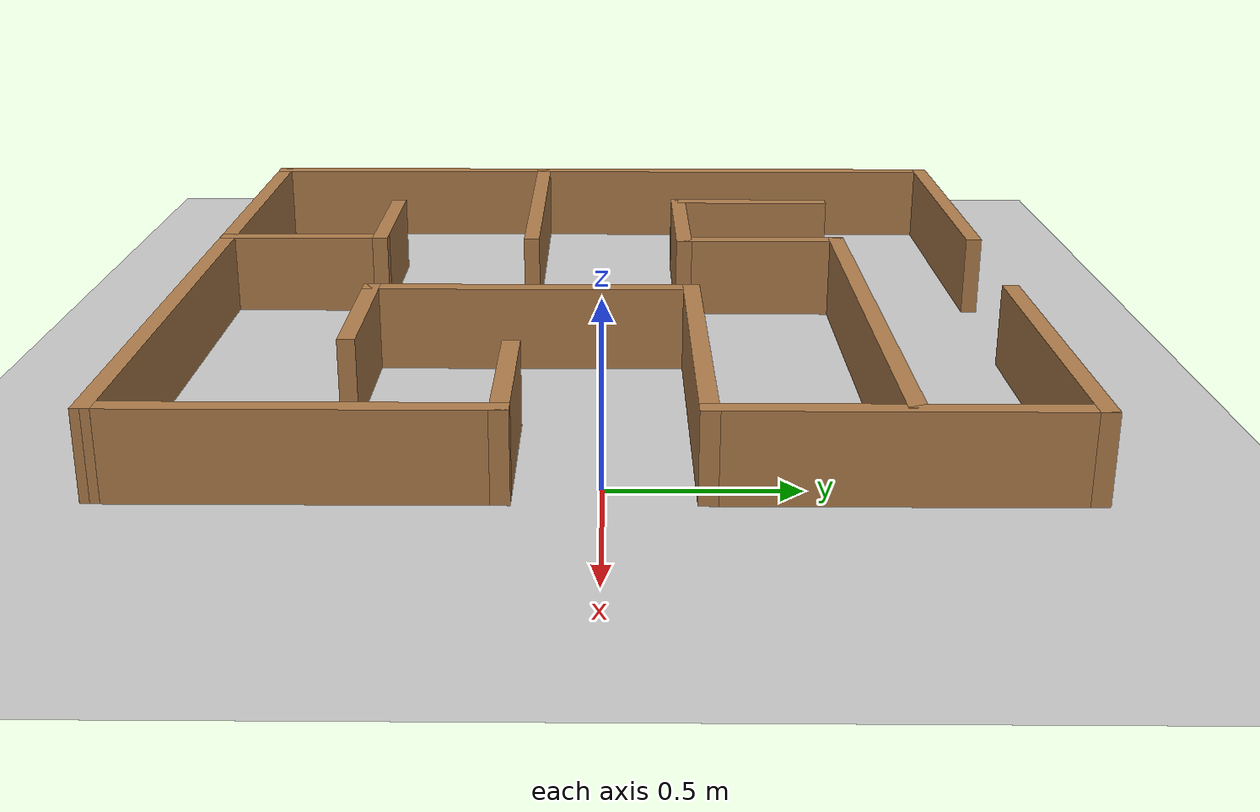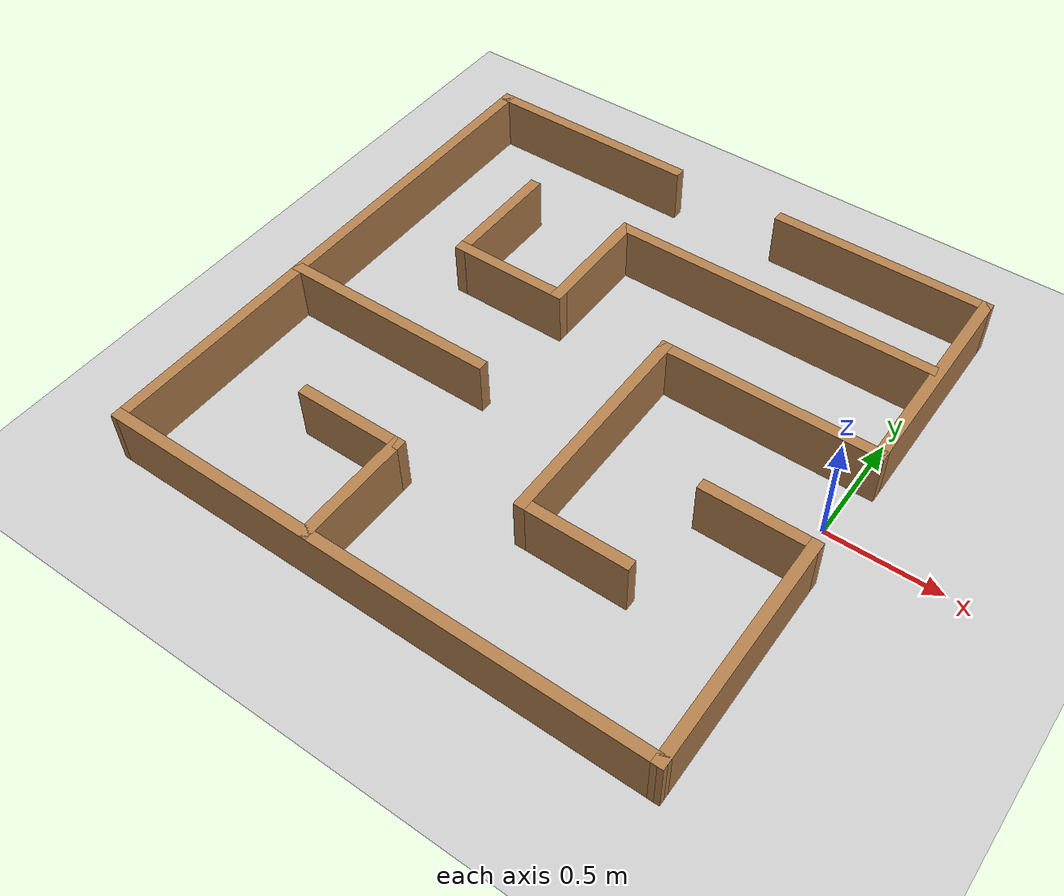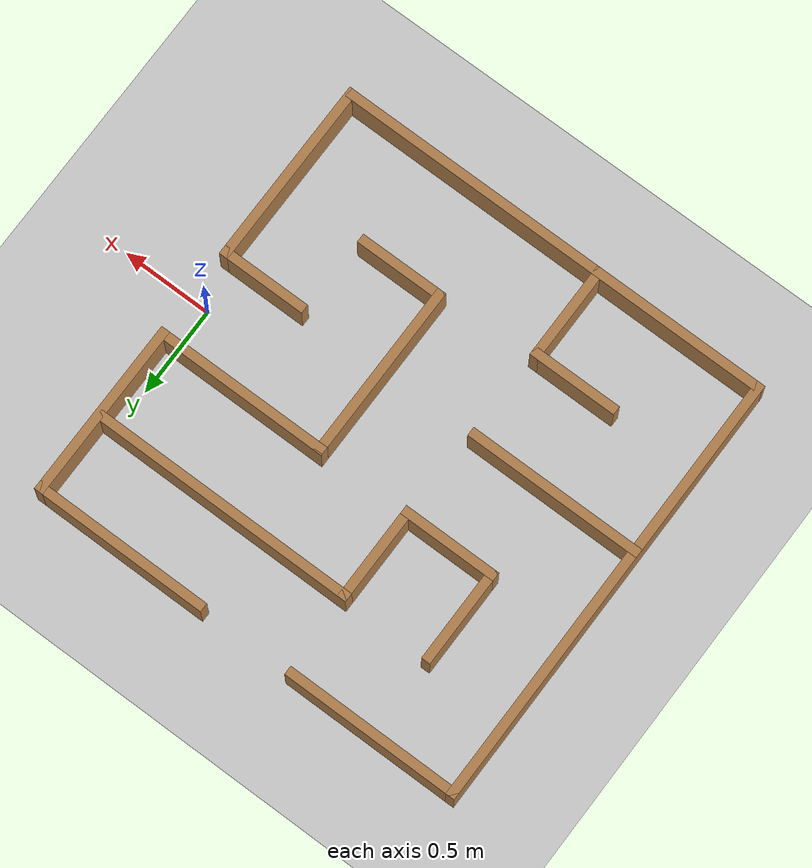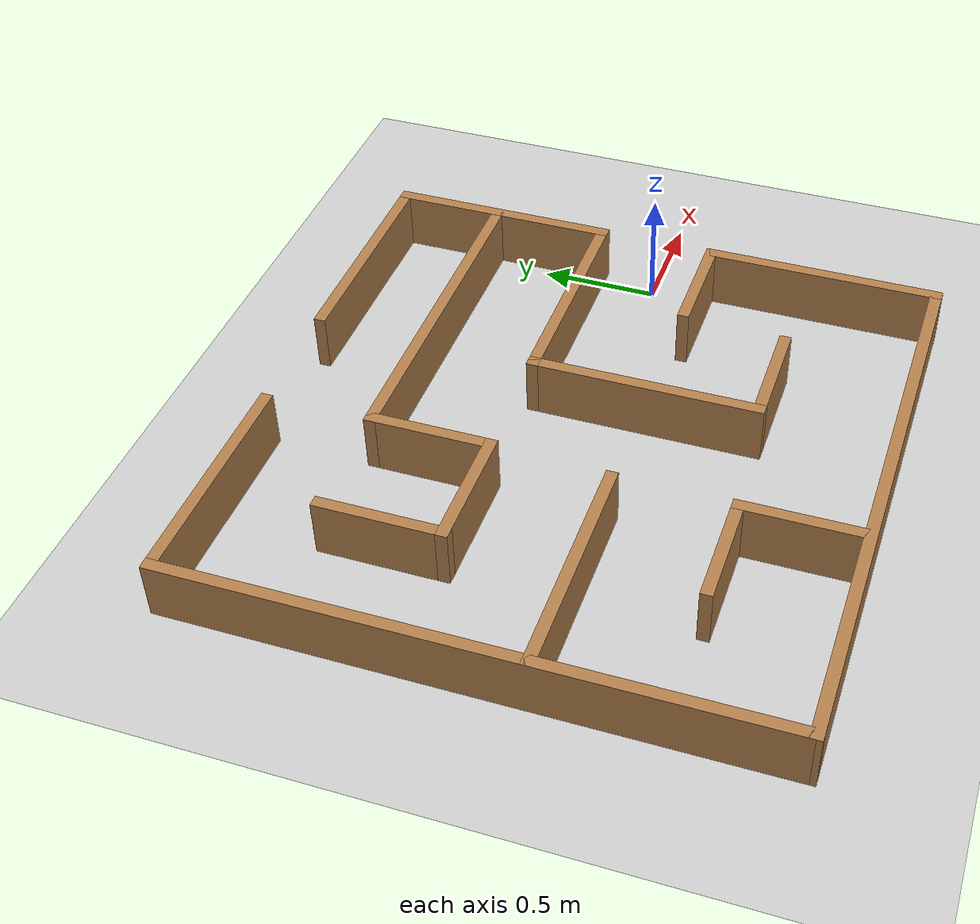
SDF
<sdf version="1.7">
 <world name="default">
  <light name="sun" type="directional">
   <pose>0 0 10 0 -0 0</pose>
   <diffuse>0.8 0.8 0.8 1</diffuse>
   <specular>0.2 0.2 0.2 1</specular>
   <attenuation>
    <range>1000</range>
    <constant>0.9</constant>
    <linear>0.01</linear>
    <quadratic>0.001</quadratic>
   </attenuation>
   <direction>-0.5 0.1 -0.9</direction>
   <spot><inner_angle>0</inner_angle><outer_angle>0</outer_angle><falloff>0</falloff></spot>
  </light>
  <model name="ground_plane">
   <static>1</static>
   <link name="link">
    <collision name="collision">
     <geometry><plane><normal>0 0 1</normal><size>100 100</size></plane></geometry>
     <surface>
      <contact><collide_bitmask>65535</collide_bitmask></contact>
      <friction><ode><mu>100</mu><mu2>50</mu2></ode></friction>
     </surface>
    </collision>
    <visual name="visual">
     <cast_shadows>0</cast_shadows>
     <geometry><plane><normal>0 0 1</normal><size>100 100</size></plane></geometry>
     <material>
      <script><uri>file://media/materials/scripts/gazebo.material</uri><name>Gazebo/Grey</name></script>
     </material>
    </visual>
   </link>
  </model>
  <gravity>0 0 -9.8</gravity>
  <magnetic_field>6e-06 2.3e-05 -4.2e-05</magnetic_field>
  <atmosphere type="adiabatic"/>
  <physics type="ode">
   <max_step_size>0.001</max_step_size>
   <real_time_factor>1</real_time_factor>
   <real_time_update_rate>1000</real_time_update_rate>
  </physics>
  <scene><ambient>0.4 0.4 0.4 1</ambient><background>0.7 0.7 0.7 1</background><shadows>1</shadows></scene>
  <audio><device>default</device></audio>
  <spherical_coordinates>
   <surface_model>EARTH_WGS84</surface_model>
   <latitude_deg>0</latitude_deg>
   <longitude_deg>0</longitude_deg>
   <elevation>0</elevation>
   <heading_deg>0</heading_deg>
  </spherical_coordinates>
  <model name="maze">
   <pose>-1.05 -0.02 0 0 -0 0</pose>
   <link name="Wall_10">
    <collision name="Wall_10_Collision">
     <geometry><box><size>1.05 0.05 0.25</size></box></geometry>
     <pose>0 0 0.125 0 -0 0</pose>
    </collision>
    <visual name="Wall_10_Visual">
     <pose>0 0 0.125 0 -0 0</pose>
     <geometry><box><size>1.05 0.05 0.25</size></box></geometry>
     <material>
      <script><uri>file://media/materials/scripts/gazebo.material</uri><name>Gazebo/Wood</name></script>
      <ambient>1 1 1 1</ambient>
     </material>
     <meta><layer>0</layer></meta>
    </visual>
    <pose>1.11502 -0.727461 0 0 -0 1.5708</pose>
   </link>
   <link name="Wall_12">
    <collision name="Wall_12_Collision">
     <geometry><box><size>2.5 0.05 0.25</size></box></geometry>
     <pose>0 0 0.125 0 -0 0</pose>
    </collision>
    <visual name="Wall_12_Visual">
     <pose>0 0 0.125 0 -0 0</pose>
     <geometry><box><size>2.5 0.05 0.25</size></box></geometry>
     <material>
      <script><uri>file://media/materials/scripts/gazebo.material</uri><name>Gazebo/Wood</name></script>
      <ambient>1 1 1 1</ambient>
     </material>
     <meta><layer>0</layer></meta>
    </visual>
    <pose>-0.109976 -1.22497 0 0 -0 3.13956</pose>
   </link>
   <link name="Wall_18">
    <collision name="Wall_18_Collision">
     <geometry><box><size>2.5 0.05 0.25</size></box></geometry>
     <pose>0 0 0.125 0 -0 0</pose>
    </collision>
    <visual name="Wall_18_Visual">
     <pose>0 0 0.125 0 -0 0</pose>
     <geometry><box><size>2.5 0.05 0.25</size></box></geometry>
     <material>
      <script><uri>file://media/materials/scripts/gazebo.material</uri><name>Gazebo/Wood</name></script>
      <ambient>1 1 1 1</ambient>
     </material>
     <meta><layer>0</layer></meta>
    </visual>
    <pose>-1.33498 0.002511 0 0 -0 1.5708</pose>
   </link>
   <link name="Wall_20">
    <collision name="Wall_20_Collision">
     <geometry><box><size>1 0.05 0.25</size></box></geometry>
     <pose>0 0 0.125 0 -0 0</pose>
    </collision>
    <visual name="Wall_20_Visual">
     <pose>0 0 0.125 0 -0 0</pose>
     <geometry><box><size>1 0.05 0.25</size></box></geometry>
     <material>
      <script><uri>file://media/materials/scripts/gazebo.material</uri><name>Gazebo/Wood</name></script>
      <ambient>1 1 1 1</ambient>
     </material>
     <meta><layer>0</layer></meta>
    </visual>
    <pose>-0.859976 1.22751 0 0 -0 0</pose>
   </link>
   <link name="Wall_24">
    <collision name="Wall_24_Collision">
     <geometry><box><size>0.5 0.05 0.25</size></box></geometry>
     <pose>0 0 0.125 0 -0 0</pose>
    </collision>
    <visual name="Wall_24_Visual">
     <pose>0 0 0.125 0 -0 0</pose>
     <geometry><box><size>0.5 0.05 0.25</size></box></geometry>
     <material>
      <script><uri>file://media/materials/scripts/gazebo.material</uri><name>Gazebo/Wood</name></script>
      <ambient>1 1 1 1</ambient>
     </material>
     <meta><layer>0</layer></meta>
    </visual>
    <pose>0.890024 -0.227461 0 0 -0 3.14159</pose>
   </link>
   <link name="Wall_27">
    <collision name="Wall_27_Collision">
     <geometry><box><size>1 0.05 0.25</size></box></geometry>
     <pose>0 0 0.125 0 -0 0</pose>
    </collision>
    <visual name="Wall_27_Visual">
     <pose>0 0 0.125 0 -0 0</pose>
     <geometry><box><size>1 0.05 0.25</size></box></geometry>
     <material>
      <script><uri>file://media/materials/scripts/gazebo.material</uri><name>Gazebo/Wood</name></script>
      <ambient>1 1 1 1</ambient>
     </material>
     <meta><layer>0</layer></meta>
    </visual>
    <pose>0.640024 1.22751 0 0 -0 3.14159</pose>
   </link>
   <link name="Wall_29">
    <collision name="Wall_29_Collision">
     <geometry><box><size>1 0.05 0.25</size></box></geometry>
     <pose>0 0 0.125 0 -0 0</pose>
    </collision>
    <visual name="Wall_29_Visual">
     <pose>0 0 0.125 0 -0 0</pose>
     <geometry><box><size>1 0.05 0.25</size></box></geometry>
     <material>
      <script><uri>file://media/materials/scripts/gazebo.material</uri><name>Gazebo/Wood</name></script>
      <ambient>1 1 1 1</ambient>
     </material>
     <meta><layer>0</layer></meta>
    </visual>
    <pose>1.11502 0.752511 0 0 -0 -1.5708</pose>
   </link>
   <link name="Wall_30">
    <collision name="Wall_30_Collision">
     <geometry><box><size>1 0.05 0.25</size></box></geometry>
     <pose>0 0 0.125 0 -0 0</pose>
    </collision>
    <visual name="Wall_30_Visual">
     <pose>0 0 0.125 0 -0 0</pose>
     <geometry><box><size>1 0.05 0.25</size></box></geometry>
     <material>
      <script><uri>file://media/materials/scripts/gazebo.material</uri><name>Gazebo/Wood</name></script>
      <ambient>1 1 1 1</ambient>
     </material>
     <meta><layer>0</layer></meta>
    </visual>
    <pose>0.640024 0.277511 0 0 -0 3.14159</pose>
   </link>
   <link name="Wall_32">
    <collision name="Wall_32_Collision">
     <geometry><box><size>0.5 0.05 0.25</size></box></geometry>
     <pose>0 0 0.125 0 -0 0</pose>
    </collision>
    <visual name="Wall_32_Visual">
     <pose>0 0 0.125 0 -0 0</pose>
     <geometry><box><size>0.5 0.05 0.25</size></box></geometry>
     <material>
      <script><uri>file://media/materials/scripts/gazebo.material</uri><name>Gazebo/Wood</name></script>
      <ambient>1 1 1 1</ambient>
     </material>
     <meta><layer>0</layer></meta>
    </visual>
    <pose>0.390024 -0.672489 0 0 -0 0</pose>
   </link>
   <link name="Wall_35">
    <collision name="Wall_35_Collision">
     <geometry><box><size>0.55 0.05 0.25</size></box></geometry>
     <pose>0 0 0.125 0 -0 0</pose>
    </collision>
    <visual name="Wall_35_Visual">
     <pose>0 0 0.125 0 -0 0</pose>
     <geometry><box><size>0.55 0.05 0.25</size></box></geometry>
     <material>
      <script><uri>file://media/materials/scripts/gazebo.material</uri><name>Gazebo/Wood</name></script>
      <ambient>1 1 1 1</ambient>
     </material>
     <meta><layer>0</layer></meta>
    </visual>
    <pose>-0.384976 -0.972489 0 0 -0 1.5708</pose>
   </link>
   <link name="Wall_36">
    <collision name="Wall_36_Collision">
     <geometry><box><size>0.5 0.05 0.25</size></box></geometry>
     <pose>0 0 0.125 0 -0 0</pose>
    </collision>
    <visual name="Wall_36_Visual">
     <pose>0 0 0.125 0 -0 0</pose>
     <geometry><box><size>0.5 0.05 0.25</size></box></geometry>
     <material>
      <script><uri>file://media/materials/scripts/gazebo.material</uri><name>Gazebo/Wood</name></script>
      <ambient>1 1 1 1</ambient>
     </material>
     <meta><layer>0</layer></meta>
    </visual>
    <pose>-0.609976 -0.722489 0 0 -0 3.14159</pose>
   </link>
   <link name="Wall_38">
    <collision name="Wall_38_Collision">
     <geometry><box><size>1 0.05 0.25</size></box></geometry>
     <pose>0 0 0.125 0 -0 0</pose>
    </collision>
    <visual name="Wall_38_Visual">
     <pose>0 0 0.125 0 -0 0</pose>
     <geometry><box><size>1 0.05 0.25</size></box></geometry>
     <material>
      <script><uri>file://media/materials/scripts/gazebo.material</uri><name>Gazebo/Wood</name></script>
      <ambient>1 1 1 1</ambient>
     </material>
     <meta><layer>0</layer></meta>
    </visual>
    <pose>0.165024 -0.197489 0 0 -0 -1.5708</pose>
   </link>
   <link name="Wall_41">
    <collision name="Wall_41_Collision">
     <geometry><box><size>1 0.05 0.25</size></box></geometry>
     <pose>0 0 0.125 0 -0 0</pose>
    </collision>
    <visual name="Wall_41_Visual">
     <pose>0 0 0.125 0 -0 0</pose>
     <geometry><box><size>1 0.05 0.25</size></box></geometry>
     <material>
      <script><uri>file://media/materials/scripts/gazebo.material</uri><name>Gazebo/Wood</name></script>
      <ambient>1 1 1 1</ambient>
     </material>
     <meta><layer>0</layer></meta>
    </visual>
    <pose>-0.859976 -0.222489 0 0 -0 0</pose>
   </link>
   <link name="Wall_43">
    <collision name="Wall_43_Collision">
     <geometry><box><size>1.5 0.05 0.25</size></box></geometry>
     <pose>0 0 0.125 0 -0 0</pose>
    </collision>
    <visual name="Wall_43_Visual">
     <pose>0 0 0.125 0 -0 0</pose>
     <geometry><box><size>1.5 0.05 0.25</size></box></geometry>
     <material>
      <script><uri>file://media/materials/scripts/gazebo.material</uri><name>Gazebo/Wood</name></script>
      <ambient>1 1 1 1</ambient>
     </material>
     <meta><layer>0</layer></meta>
    </visual>
    <pose>0.368589 0.776924 0 0 -0 3.14159</pose>
   </link>
   <link name="Wall_44">
    <collision name="Wall_44_Collision">
     <geometry><box><size>0.55 0.05 0.25</size></box></geometry>
     <pose>0 0 0.125 0 -0 0</pose>
    </collision>
    <visual name="Wall_44_Visual">
     <pose>0 0 0.125 0 -0 0</pose>
     <geometry><box><size>0.55 0.05 0.25</size></box></geometry>
     <material>
      <script><uri>file://media/materials/scripts/gazebo.material</uri><name>Gazebo/Wood</name></script>
      <ambient>1 1 1 1</ambient>
     </material>
     <meta><layer>0</layer></meta>
    </visual>
    <pose>-0.356411 0.526924 0 0 -0 -1.5708</pose>
   </link>
   <link name="Wall_45">
    <collision name="Wall_45_Collision">
     <geometry><box><size>0.55 0.05 0.25</size></box></geometry>
     <pose>0 0 0.125 0 -0 0</pose>
    </collision>
    <visual name="Wall_45_Visual">
     <pose>0 0 0.125 0 -0 0</pose>
     <geometry><box><size>0.55 0.05 0.25</size></box></geometry>
     <material>
      <script><uri>file://media/materials/scripts/gazebo.material</uri><name>Gazebo/Wood</name></script>
      <ambient>1 1 1 1</ambient>
     </material>
     <meta><layer>0</layer></meta>
    </visual>
    <pose>-0.606411 0.276924 0 0 -0 3.14159</pose>
   </link>
   <link name="Wall_46">
    <collision name="Wall_46_Collision">
     <geometry><box><size>0.55 0.05 0.25</size></box></geometry>
     <pose>0 0 0.125 0 -0 0</pose>
    </collision>
    <visual name="Wall_46_Visual">
     <pose>0 0 0.125 0 -0 0</pose>
     <geometry><box><size>0.55 0.05 0.25</size></box></geometry>
     <material>
      <script><uri>file://media/materials/scripts/gazebo.material</uri><name>Gazebo/Wood</name></script>
      <ambient>1 1 1 1</ambient>
     </material>
     <meta><layer>0</layer></meta>
    </visual>
    <pose>-0.856411 0.526924 0 0 -0 1.5708</pose>
   </link>
   <static>1</static>
  </model>
 </world>
</sdf>
